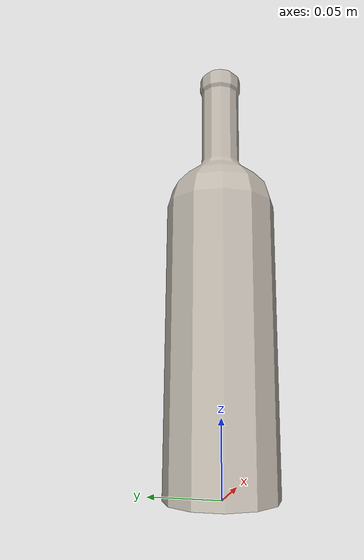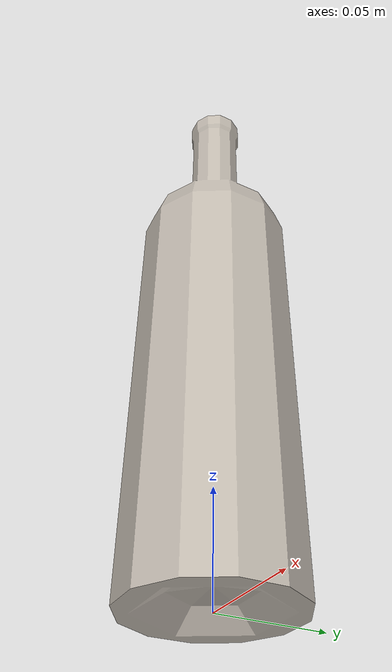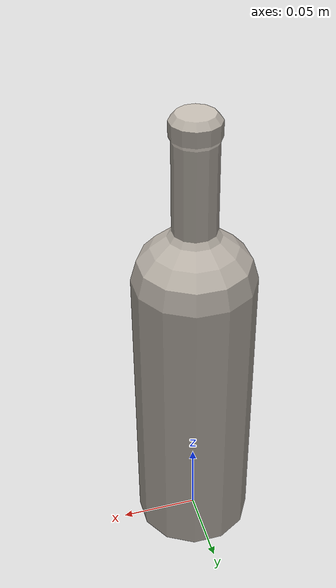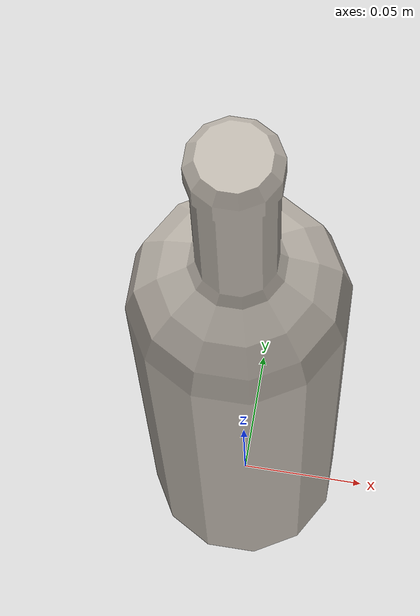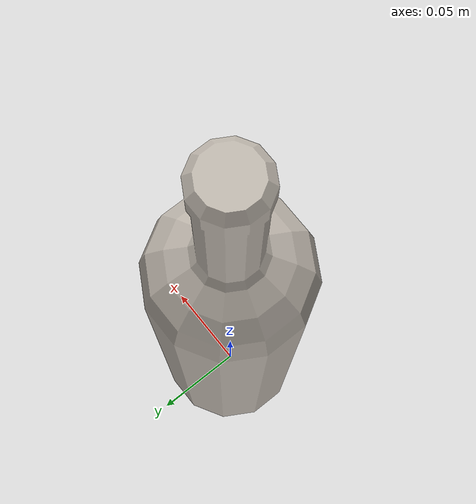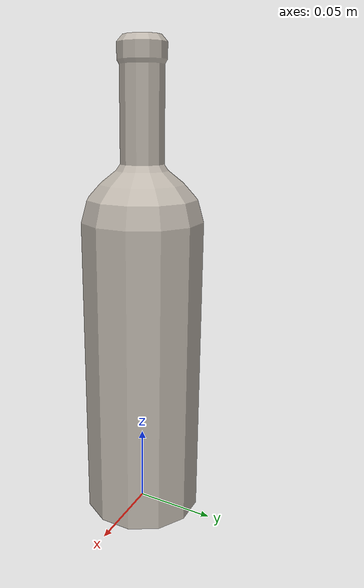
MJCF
<?xml version="1.0" encoding="utf-8"?>
<mujoco model="wine">
  <compiler angle="radian" meshdir="assets" texturedir="assets" autolimits="true"/>
  <asset>
    <mesh file="wine_bottle.obj"/>
    <mesh file="wine_bottle_collision_001.obj"/>
    <mesh file="wine_bottle_collision_002.obj"/>
    <texture type="2d" name="wine" file="wine_bottle_basecolor.png"/>
    <material name="wine" specular="0.2" shininess="0.2" texture="wine"/>
  </asset>
  <default>
    <default class="wine">
      <default class="visual">
        <geom type="mesh" mass="0.5" contype="0" conaffinity="0" group="2"/>
      </default>
      <default class="collision">
        <geom type="mesh" mass="0" group="3" solimp="0.998 0.998 0.001" solref="0.004 1"/>
      </default>
      <default class="balance">
        <geom group="3" type="sphere" mass="0.1" size="0.01" pos="0 0 -0.02" contype="0" conaffinity="0"/>
      </default>
    </default>
  </default>
  <worldbody>
    <body name="wine" childclass="wine">
      <geom name="mesh" mesh="wine_bottle" class="visual" material="wine" euler="1.5708 0 0"/>
      <geom name="collider_1" mesh="wine_bottle_collision_001" class="collision" euler="1.5708 0 0"/>
      <geom name="collider_2" mesh="wine_bottle_collision_002" class="collision" euler="1.5708 0 0"/>
      <geom class="balance"/>
    </body>
  </worldbody>
</mujoco>
